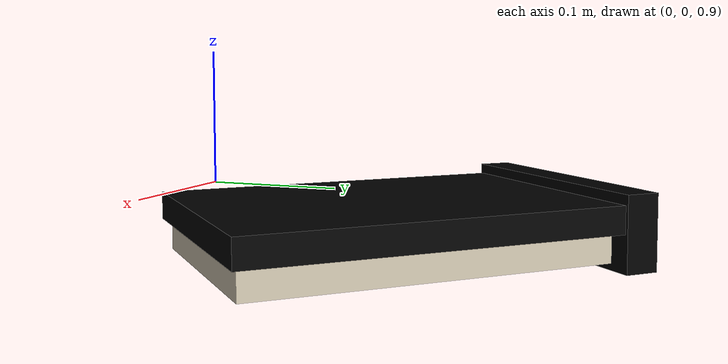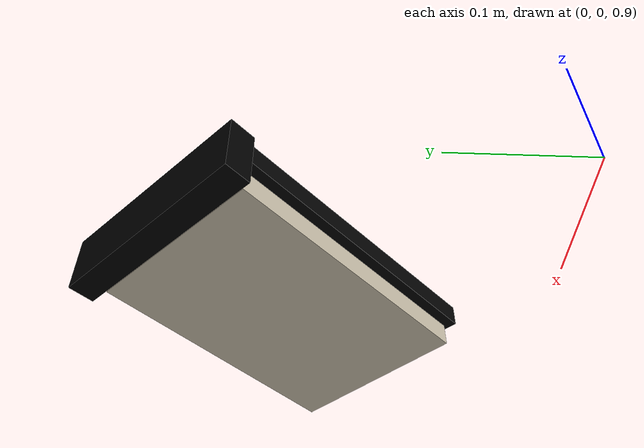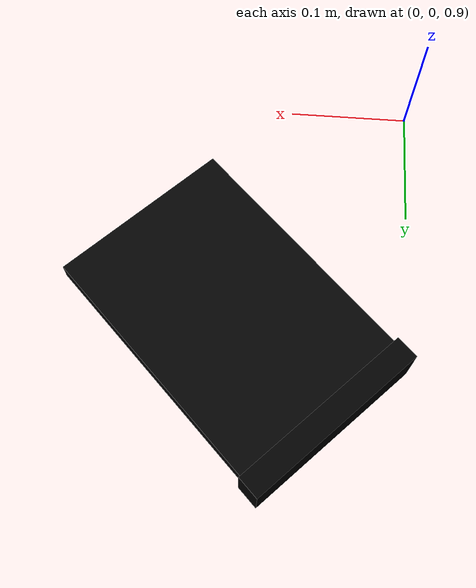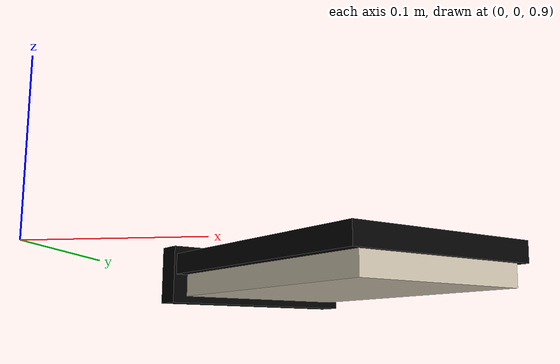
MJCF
<mujoco model="custom_reference_black_book_microwave_flat">
  <asset>
    <material name="cover" rgba="0.01 0.01 0.01 1"/>
    <material name="pages" rgba="0.78 0.74 0.66 1"/>
  </asset>
  <worldbody>
    <body>
      <body name="object" pos="0.1400 0.2000 0.8600" quat="0.92387956 0 0 -0.38268336">
        <geom name="pages" type="box" size="0.105 0.070 0.010" pos="0.006 0 0.035" rgba="0.78 0.74 0.66 1" group="1" contype="0" conaffinity="0"/>
        <geom name="cover" type="box" size="0.115 0.078 0.008" pos="0 0 0.050" rgba="0.01 0.01 0.01 1" group="1" contype="0" conaffinity="0"/>
        <geom name="spine" type="box" size="0.010 0.080 0.022" pos="-0.112 0 0.042" rgba="0 0 0 1" group="1" contype="0" conaffinity="0"/>
      </body>
      <site name="bottom_site" pos="0 0 0" size="0.005" rgba="0 0 0 0"/>
      <site name="top_site" pos="0 0 0.060" size="0.005" rgba="0 0 0 0"/>
      <site name="horizontal_radius_site" pos="0.130 0.130 0.030" size="0.005" rgba="0 0 0 0"/>
    </body>
  </worldbody>
</mujoco>
